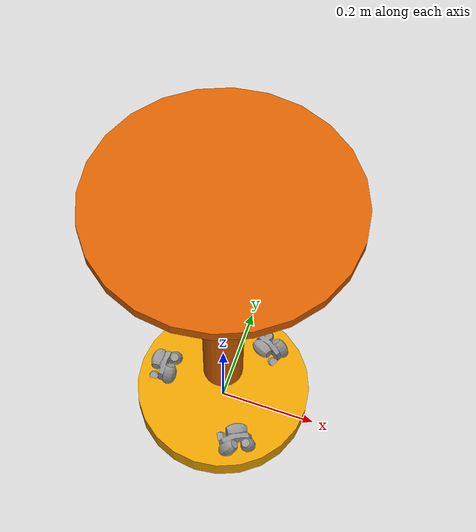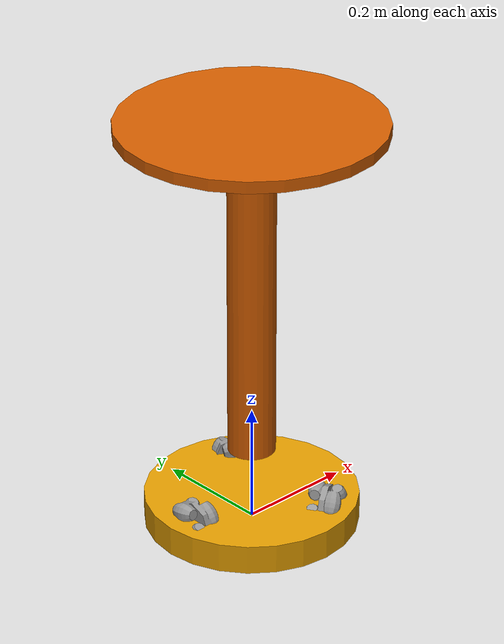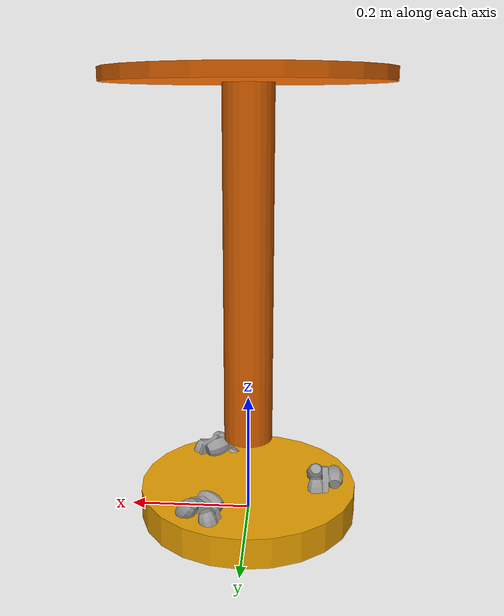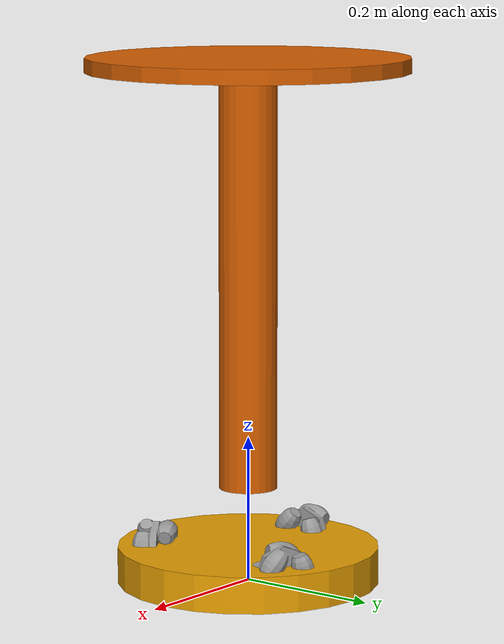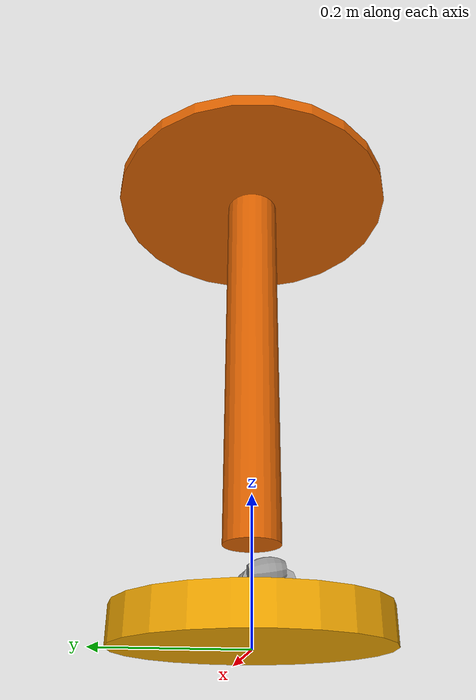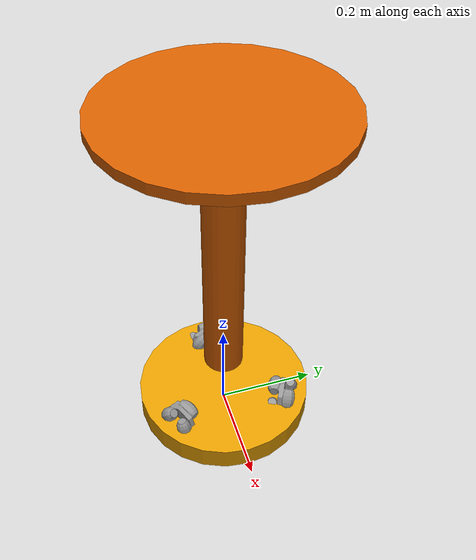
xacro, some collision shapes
<?xml version="1.0"?>
<robot name="rto" xmlns:xacro="http://wiki.ros.org/xacro">
    <xacro:include filename="$(find tme_models)/urdf/rto_body.urdf.xacro"/>
    <xacro:include filename="$(find tme_models)/urdf/rto_parts.urdf.xacro"/>
    <xacro:rto_body/>
    <!-- add platform -->
    <xacro:platform name="platform" parent="base_link">
        <origin xyz="0.0 0.0 0.13" rpy="0 0 0"/>
    </xacro:platform>
</robot>

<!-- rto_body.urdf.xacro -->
<robot xmlns:xacro="http://wiki.ros.org/xacro">
    <xacro:property name="M_PI" value="3.14159"/>
    <xacro:property name="M_SCALE" value="0.01"/>
    <xacro:property name="BASE_RADIUS" value="0.18"/>
    <xacro:property name="BASE_HEIGHT" value="0.05"/>
    <xacro:property name="BASE_MASS" value="20"/>
    <!-- rto_body -->
    <xacro:macro name="rto_body">
        <!-- base_link -->
        <link name="base_link">
            <inertial>
                <mass value="${BASE_MASS}" />
                <origin xyz="0 0 0" />
                <inertia ixx="1.0" ixy="0.0" ixz="0.0"
                    iyy="1.0" iyz="0.0"
                    izz="1.0" />
            </inertial>
            <visual>
                <origin xyz="0.01 0 0" rpy="0 0 ${M_PI/2}"/>
                <geometry>
                    <mesh filename="package://tme_models/meshes/parts/rto_base.dae"
                        scale="${M_SCALE} ${M_SCALE} ${M_SCALE}"/>
                </geometry>
            </visual>
            <collision>
                <origin xyz="0 0 ${BASE_HEIGHT/2}" rpy="0 0 0" />
                <geometry>
                    <cylinder radius="${BASE_RADIUS}" length="${BASE_HEIGHT}"/>
                </geometry>
                <surface>
         	<contact>
          		<collide_bitmask>1</collide_bitmask>
         	</contact>
      		</surface>
            </collision>
        </link>
        <gazebo reference="base_link">
            <turnGravityOff>false</turnGravityOff>
        </gazebo>
        <!-- wheels -->
        <xacro:wheel name="wheel0" parent="base_link">
            <origin xyz="0.065 0.11 0.04" rpy="0 0 ${M_PI/3}"/>
            <axis xyz="-1 0 0"/>
        </xacro:wheel >
        <xacro:wheel  name="wheel1" parent="base_link">
            <origin xyz="-0.13 0 0.04" rpy="0 0 0"/>
            <axis xyz="1 0 0"/>
        </xacro:wheel >
        <xacro:wheel  name="wheel2" parent="base_link">
            <origin xyz="0.065 -0.11 0.04" rpy="0 0 -${M_PI/3}"/>
            <axis xyz="-1 0 0"/>
        </xacro:wheel >
        <!-- others -->
        <xacro:command_bridge name="command_bridge" parent="base_link">
            <origin xyz="-0.05 0 0.13" rpy="0 0 ${M_PI/2}"/>
        </xacro:command_bridge>
        <!-- gazebo control -->
        <gazebo>
            <plugin name="object_controller" filename="libgazebo_ros_planar_move.so">
                <commandTopic>cmd_vel</commandTopic>
                <odometryTopic>odom</odometryTopic>
                <odometryFrame>odom</odometryFrame>
                <odometryRate>20</odometryRate>
                <robotBaseFrame>base_link</robotBaseFrame>
                <publishTF>true</publishTF>
            </plugin>
            <plugin name="gazebo_ros_control" filename="libgazebo_ros_control.so"/>
        </gazebo>
    </xacro:macro>
</robot>

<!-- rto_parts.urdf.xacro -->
<robot xmlns:xacro="http://wiki.ros.org/xacro">
    <xacro:property name="M_PI" value="3.14159"/>
    <xacro:property name="M_SCALE" value="0.01"/>
    <xacro:property name="PLATFORM_HEIGHT" value="0.58"/>
    <xacro:property name="PLATFORM_RADIUS" value="0.22"/>
    <material name="dark_grey">
        <color rgba="${150/255} ${150/255} ${150/255} 1.0"/>
    </material>
    <!-- wheel -->
    <xacro:macro name="wheel" params="parent name *origin *axis">
        <link name="${name}_link">
            <inertial>
                <mass value="0.00001"/>
                <origin xyz="0 0 0"/>
                <inertia ixx="1.0" ixy="0.0" ixz="0.0" iyy="1.0" iyz="0.0" izz="1.0"/>
            </inertial>
            <visual>
                <origin xyz="0 0 0" rpy="0 0 0"/>
                <geometry>
                    <mesh filename="package://tme_models/meshes/parts/rto_wheel.dae" scale="${M_SCALE} ${M_SCALE} ${M_SCALE}"/>
                </geometry>
            </visual>
        </link>
        <gazebo reference="${name}_link">
            <material>Gazebo/Grey</material>
            <turnGravityOff>false</turnGravityOff>
        </gazebo>
        <joint name="${name}_joint" type="fixed">
            <xacro:insert_block name="origin" />
            <xacro:insert_block name="axis"/>
            <parent link="${parent}"/>
            <child link="${name}_link"/>
        </joint>
        <!-- ToDo: Comment out and use to turn the mecanum -->
    </xacro:macro>
    <!-- command bridge -->
    <xacro:macro name="command_bridge" params="parent name *origin">
        <link name="${name}_link">
            <inertial>
                <mass value="0.00001"/>
                <origin xyz="0 0 0"/>
                <inertia ixx="1.0" ixy="0.0" ixz="0.0" iyy="1.0" iyz="0.0" izz="1.0"/>
            </inertial>
            <collision>
                <origin xyz="0 0 0" rpy="0 0 0"/>
                <geometry>
                    <box size="0.25 0.11 0.16"/>
                </geometry>
                <surface>
         	<contact>
          		<collide_bitmask>0x1</collide_bitmask>
         	</contact>
      		</surface>
            </collision>
        </link>
        <joint name="${name}_joint" type="fixed">
            <xacro:insert_block name="origin"/>
            <parent link="${parent}"/>
            <child link="${name}_link"/>
        </joint>
    </xacro:macro>
    <!-- angle bracket with USB hub -->
    <xacro:macro name="anglebracketusb" params="parent name *origin">
        <link name="${name}_link">
            <inertial>
                <mass value="0.00001"/>
                <origin xyz="0 0 0"/>
                <inertia ixx="1.0" ixy="0.0" ixz="0.0" iyy="1.0" iyz="0.0" izz="1.0"/>
            </inertial>
            <visual>
                <origin xyz="0 0 0" rpy="0 0 0"/>
                <geometry>
                    <mesh filename="package://tme_models/meshes/parts/angle_bracket_usb_hub.dae" scale="${M_SCALE} ${M_SCALE} ${M_SCALE}"/>
                </geometry>
            </visual>
        </link>
        <joint name="${name}_joint" type="fixed">
            <xacro:insert_block name="origin"/>
            <parent link="${parent}"/>
            <child link="${name}_link"/>
        </joint>
    </xacro:macro>
    <!-- platform -->
    <xacro:macro name="platform" params="parent name *origin">
        <link name="${name}_link">
            <inertial>
                <mass value="0.00001"/>
                <origin xyz="0 0 0"/>
                <inertia ixx="1.0" ixy="0.0" ixz="0.0" iyy="1.0" iyz="0.0" izz="1.0"/>
            </inertial>
            <visual>
                <origin xyz="0 0 ${PLATFORM_HEIGHT/2}"/>
                <geometry>
                    <cylinder radius="0.04" length="${PLATFORM_HEIGHT}"/>
                </geometry>
            </visual>
            <visual>
                <origin xyz="0 0 ${PLATFORM_HEIGHT}"/>
                <geometry>
                    <!-- actual length = 0.015 -->
                    <cylinder radius="${PLATFORM_RADIUS}" length="0.02"/>
                </geometry>
            </visual>
        </link>
        <joint name="${name}_joint" type="fixed">
            <xacro:insert_block name="origin"/>
            <parent link="${parent}"/>
            <child link="${name}_link"/>
        </joint>
    </xacro:macro>
    <!-- Lochplatte -->
    <xacro:macro name="plate" params="parent name">
        <link name="${name}_link">
            <inertial>
                <mass value="0.00001"/>
                <origin xyz="0 0 0"/>
                <inertia ixx="1.0" ixy="0.0" ixz="0.0" iyy="1.0" iyz="0.0" izz="1.0"/>
            </inertial>
            <visual>
                <origin xyz="0 0 0.12"/>
                <geometry>
                    <box size="0.002 0.06 0.24"/>
                </geometry>
                <material name="dark_grey"/>
            </visual>
        </link>
        <gazebo reference="${name}_link">
            <material>Gazebo/Grey</material>
            <turnGravityOff>false</turnGravityOff>
        </gazebo>
        <joint name="${name}_joint" type="fixed">
            <origin xyz="0.05 0 0.07"/>
            <parent link="${parent}"/>
            <child link="${name}_link"/>
        </joint>
    </xacro:macro>
    <!-- Bracket -->
    <xacro:macro name="bracket" params="parent name scale *origin">
        <link name="${name}_link">
            <inertial>
                <mass value="0.00001"/>
                <origin xyz="0 0 0"/>
                <inertia ixx="1.0" ixy="0.0" ixz="0.0" iyy="1.0" iyz="0.0" izz="1.0"/>
            </inertial>
            <visual>
                <origin xyz="0 0 0" rpy="0 0 0"/>
                <geometry>
                    <mesh filename="package://tme_models/meshes/parts/bracket.dae" scale="0.001 ${scale} ${scale}"/>
                </geometry>
                <material name="dark_grey"/>
            </visual>
        </link>
        <gazebo reference="${name}_link">
            <material>Gazebo/DarkGrey</material>
            <turnGravityOff>false</turnGravityOff>
        </gazebo>
        <joint name="${name}_joint" type="fixed">
            <xacro:insert_block name="origin"/>
            <parent link="${parent}"/>
            <child link="${name}_link"/>
        </joint>
    </xacro:macro>
</robot>
